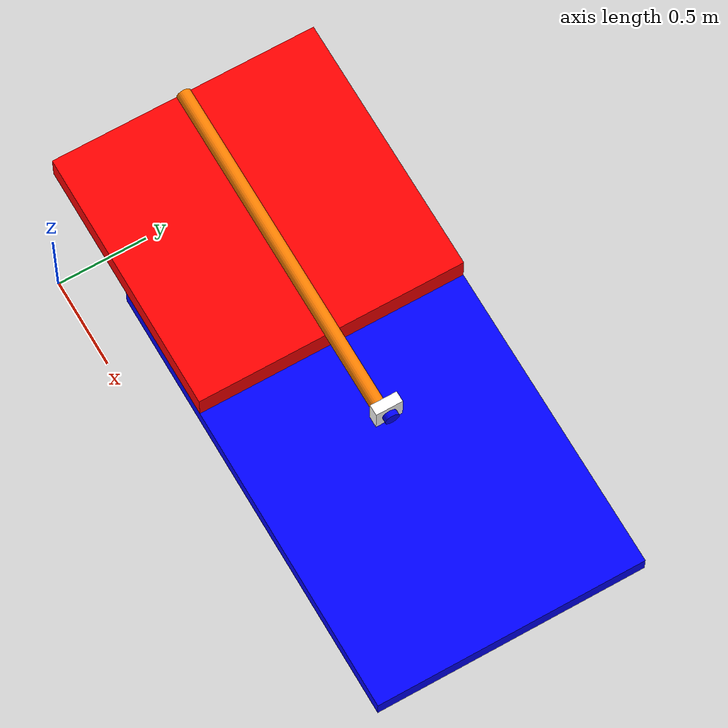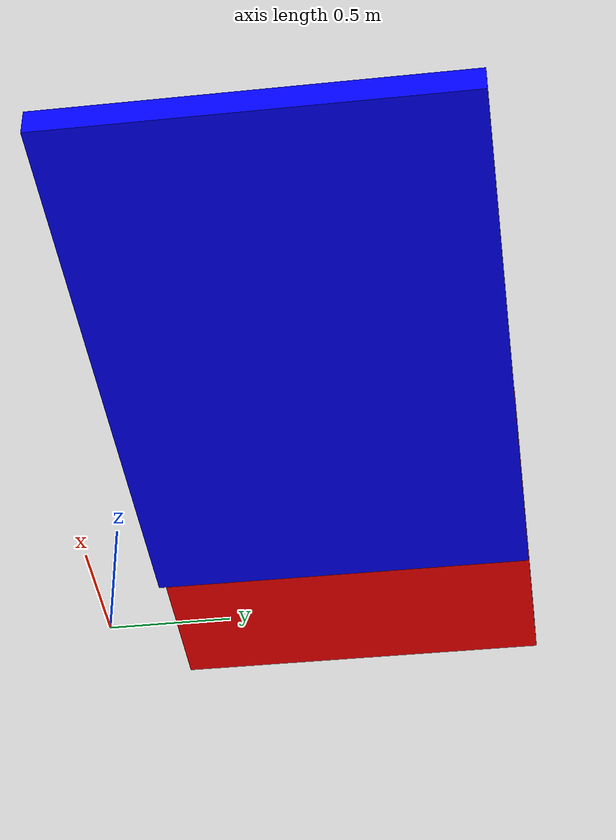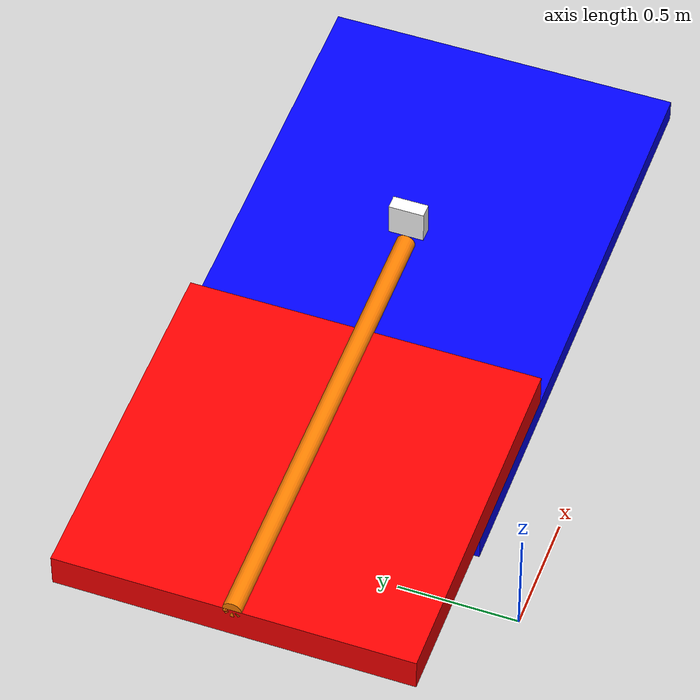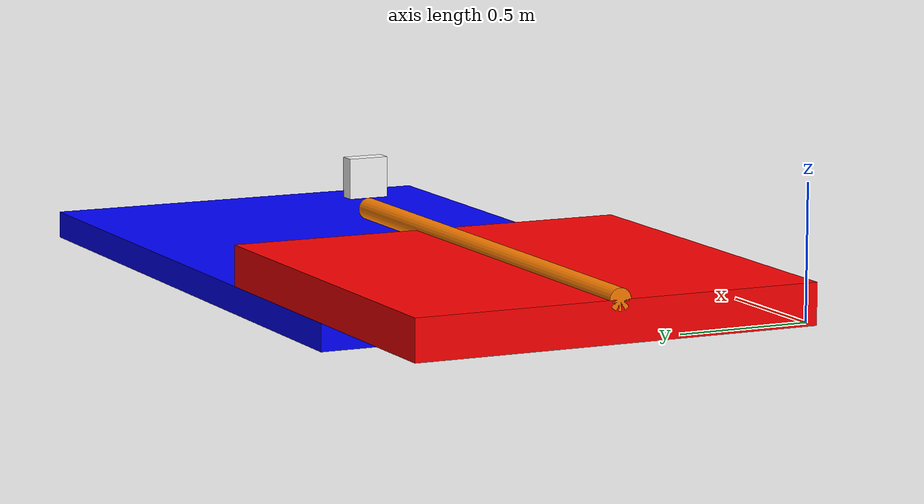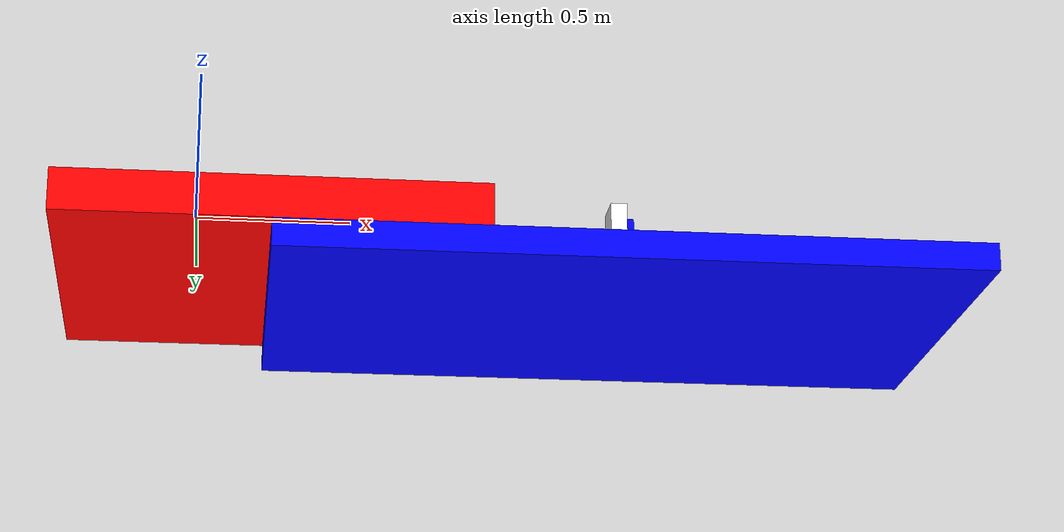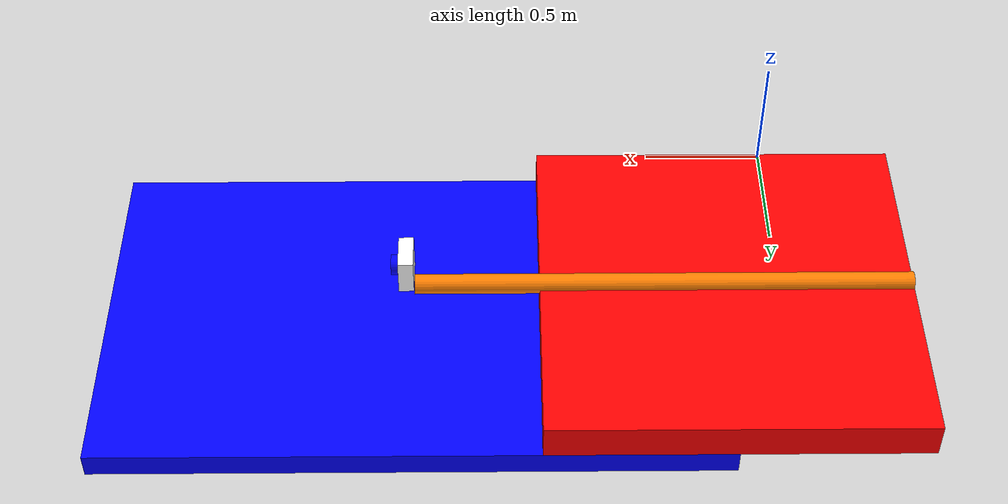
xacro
<?xml version="1.0"?>

<robot xmlns:xacro="http://www.ros.org/wiki/xacro" name="robot">

  <xacro:property name="arm_length" value="2.0"/>
  <xacro:property name="arm_radius" value="0.04"/>
  <link name="world"/>

  <!-- Base Joint -->
  <joint name="base_joint" type="fixed">
    <origin xyz="1.5 1.0 0" rpy="0 0 0"/>
    <parent link="world"/>
    <child link="base_link"/>
  </joint>

  <!-- Base Link -->
  <link name="base_link">

    <visual>
      <origin xyz="0 0 0.05" rpy="0 0 0"/>
      <geometry>
        <box size="2.5 1.5 0.1"/>
      </geometry>
      <material name="blue">
        <color rgba="0 0 1 1"/>
      </material>
    </visual>

    <collision>
      <origin xyz="0 0 0.05" rpy="0 0 0"/>
      <geometry>
        <box size="2.5 1.5 0.1"/>
      </geometry>
    </collision>

    <inertial>
      <origin xyz="0 0 0.05" rpy="0 0 0"/>
      <mass value="12"/>
      <inertia
        ixx="2.26"
        ixy="0"
        ixz="0"
        iyy="6.26"
        iyz="0"
        izz="8.5"/>
    </inertial>

  </link>

  <!-- Slider Joint -->
  <joint name="slider_joint" type="prismatic">
    <origin xyz="-1.25 0 0.1" rpy="0 0 0"/>
    <parent link="base_link"/>
    <child link="slider_link"/>
    <axis xyz="1 0 0"/>
    <limit lower="0" upper="2" effort="100" velocity="0.5"/>
  </joint>

  <!-- Slider Link -->
  <link name="slider_link">

    <visual>
      <origin xyz="0 0 0.075" rpy="0 0 0"/>
      <geometry>
        <box size="1.5 1.5 0.15"/>
      </geometry>
      <material name="red">
        <color rgba="1 0 0 1"/>
      </material>
    </visual>

    <collision>
      <origin xyz="0 0 0.075" rpy="0 0 0"/>
      <geometry>
        <box size="1.5 1.5 0.15"/>
      </geometry>
    </collision>

    <inertial>
      <origin xyz="0 0 0.075" rpy="0 0 0"/>
      <mass value="10"/>
      <inertia
        ixx="1.89"
        ixy="0"
        ixz="0"
        iyy="1.89"
        iyz="0"
        izz="3.75"/>
    </inertial>

  </link>

  <!-- Arm Joint -->
  <joint name="arm_joint" type="revolute">
    <origin xyz="-0.75 0 0.15" rpy="0 0 0"/>
    <parent link="slider_link"/>
    <child link="arm_link"/>
    <axis xyz="0 -1 0"/>
    <limit lower="0" upper="1.57" effort="100" velocity="1"/>
  </joint>

  <!-- Arm -->
  <link name="arm_link">

    <visual>
      <origin xyz="${arm_length/2} 0 0" rpy="0 ${pi/2} 0"/>
      <geometry>
        <cylinder length="${arm_length}" radius="${arm_radius}"/>
      </geometry>
      <material name="orange">
        <color rgba="1 0.5 0 1"/>
      </material>
    </visual>

    <collision>
      <origin xyz="${arm_length/2} 0 0" rpy="0 ${pi/2} 0"/>
      <geometry>
        <cylinder length="${arm_length}" radius="${arm_radius}"/>
      </geometry>
    </collision>

    <inertial>
      <origin xyz="${arm_length/2} 0 0" rpy="0 0 0"/>
      <mass value="5"/>
      <inertia
        ixx="0.5"
        ixy="0"
        ixz="0"
        iyy="0.5"
        iyz="0"
        izz="0.01"/>
    </inertial>

  </link>

  <!-- Camera Joint -->
  <joint name="camera_joint" type="fixed">
    <origin xyz="${arm_length} 0 ${arm_radius+0.075}" rpy="0 0 0"/>
    <parent link="arm_link"/>
    <child link="camera_link"/>
  </joint>

  <!-- Camera -->
  <link name="camera_link">

    <!-- Camera body -->
    <visual>
      <origin xyz="0.03 0 0" rpy="0 0 0"/>
      <geometry>
        <box size="0.06 0.15 0.15"/>
      </geometry>
      <material name="white">
        <color rgba="1 1 1 1"/>
      </material>
    </visual>

    <!-- Lens -->
    <visual>
      <origin xyz="0.06 0 0" rpy="0 ${pi/2} 0"/>
      <geometry>
        <cylinder length="0.06" radius="0.04"/>
      </geometry>
      <material name="blue">
        <color rgba="0 0 1 1"/>
      </material>
    </visual>

  </link>

</robot>
